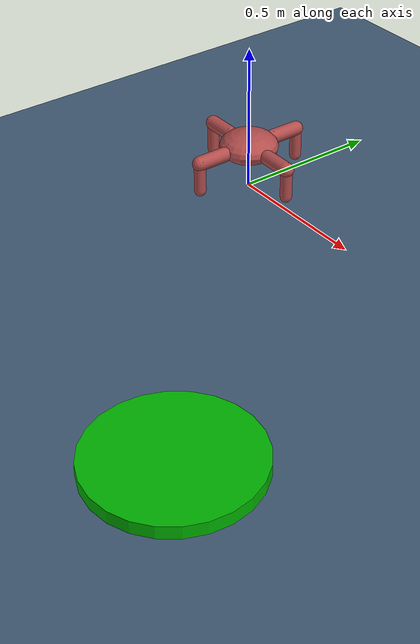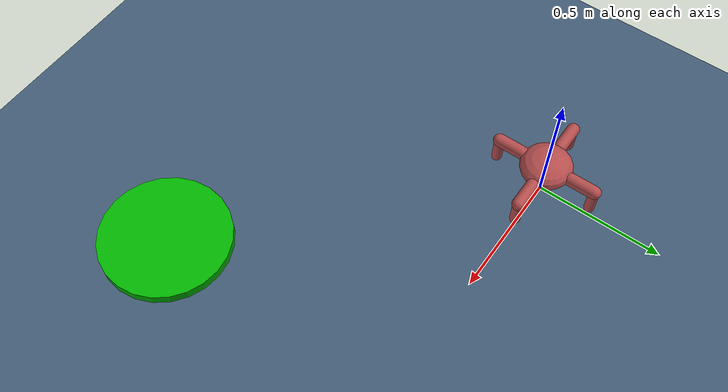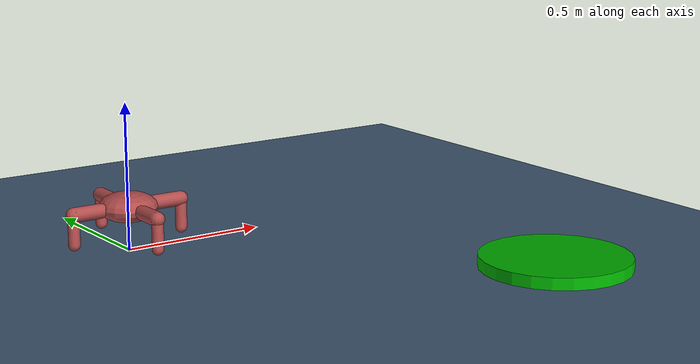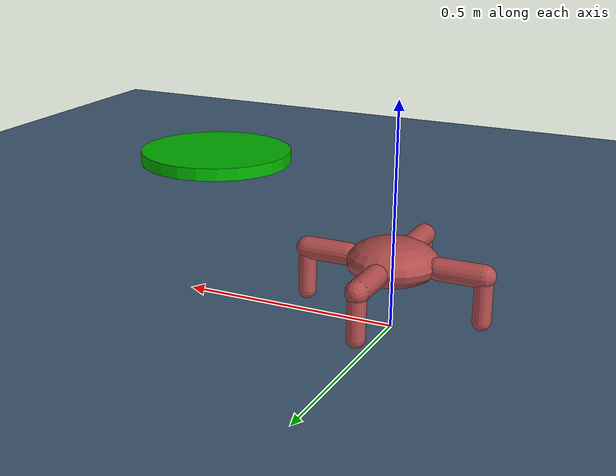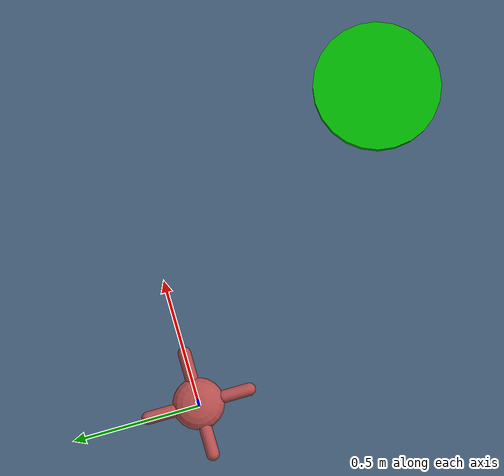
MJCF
<mujoco model="SPIDER_4_LEGS">
	<default>
		<!--
			Default values - e.g. Each geom defined in worldbody
            will be a "capsule" shape unless specified differently
            (like on line 30)
		-->
		<geom type="capsule" rgba="0.7 0.3 0.3 1" />
		<joint damping="2" type="hinge" />
	</default>

	<asset>
		<!-- Skybox texture -->
		<texture name="skybox" type="skybox" builtin="gradient" rgb1=".4 .6 .8" rgb2="0 0 0" width="800" height="800" mark="random" markrgb="1 1 1" />

		<!-- Floor texture / material -->
		<texture name="checker_pattern" type="2d" builtin="checker" width="300" height="300" rgb1="0.2 0.3 0.4" rgb2="0.3 0.4 0.5" />
		<material name="floor_material" texture="checker_pattern" texrepeat="5 5" />
	</asset>

	<visual>
		<!-- Let there be light! -->
		<headlight ambient="0.4 0.4 0.4" diffuse="0.8 0.8 0.8" specular="0.1 0.1 0.1" />
		<quality shadowsize="2048" />
	</visual>

	<!-- Let's add some objects to our model! -->
	<worldbody>
		<!-- Add a floor -->
		<geom name="floor" type="plane" size="2 2 0.1" material="floor_material" rgba="0.5 0.5 0.5 1" />

		<!-- Add a spider -->
		<body name="spider" pos="0 0 0.15">
			<!-- The spider is free to move! -->
			<freejoint />

			<!-- Spider's body -->
			<geom name="torso" type="ellipsoid" size="0.1 0.1 0.05" />

			<!-- Spider's legs -->

			<!-- Leg 1 -->
			<body name="leg1_thigh" pos="0.1 0 0" euler="0 0 0">
				<geom name="leg1_thigh" fromto="0 0 0 0.1 0 0" size="0.025" />
				<joint name="leg1_thigh" axis="0 0 1" />

				<body name="leg1_lower_leg" pos="0.1 0 0">
					<geom name="leg1_lower_leg" fromto="0 0 0 0 0 -0.1" size="0.02" />
					<joint name="leg1_lower_leg" axis="0 1 0" />
				</body>
			</body>

			<!-- Leg 2 -->
			<body name="leg2_thigh" pos="0 0.1 0" euler="0 0 90">
				<geom name="leg2_thigh" fromto="0 0 0 0.1 0 0" size="0.025" />
				<joint name="leg2_thigh" axis="0 0 1" />

				<body name="leg2_lower_leg" pos="0.1 0 0">
					<geom name="leg2_lower_leg" fromto="0 0 0 0 0 -0.1" size="0.02" />
					<joint name="leg2_lower_leg" axis="0 1 0" />
				</body>
			</body>

			<!-- Leg 3 -->
			<body name="leg3_thigh" pos="-0.1 0 0" euler="0 0 180">
				<geom name="leg3_thigh" fromto="0 0 0 0.1 0 0" size="0.025" />
				<joint name="leg3_thigh" axis="0 0 1" />

				<body name="leg3_lower_leg" pos="0.1 0 0">
					<geom name="leg3_lower_leg" fromto="0 0 0 0 0 -0.1" size="0.02" />
					<joint name="leg3_lower_leg" axis="0 1 0" />
				</body>
			</body>

			<!-- Leg 4 -->
			<body name="leg4_thigh" pos="0 -0.1 0" euler="0 0 270">
				<geom name="leg4_thigh" fromto="0 0 0 0.1 0 0" size="0.025" />
				<joint name="leg4_thigh" axis="0 0 1" />

				<body name="leg4_lower_leg" pos="0.1 0 0">
					<geom name="leg4_lower_leg" fromto="0 0 0 0 0 -0.1" size="0.02" />
					<joint name="leg4_lower_leg" axis="0 1 0" />
				</body>
			</body>
		</body>

		<!-- Add a button -->
		<body name="target_button" pos="1 -1 .032">
			<geom name="target_button" type="cylinder" size="0.25 0.0202" rgba="0 0.7 0 1" />
			<site name="target_button" type="cylinder" size="0.2525 0.0202" rgba="0 0.7 0 0" />
		</body>

	</worldbody>

	<actuator>
		<!--
			Actuators correspond to continuous actions for RL.
			Currently their ranges are between -1 and 1
			i.e. $a \in \mathcal{A} \equiv \left[ -1, 1 \right]^8$,
			but this can be changed.
		-->
		<position name="leg1_thigh" joint="leg1_thigh" kp="10" ctrllimited="true" ctrlrange="-1.0 1.0" />
		<position name="leg1_lower_leg" joint="leg1_lower_leg" kp="10" ctrllimited="true" ctrlrange="-1.0 1.0" />
		<position name="leg2_thigh" joint="leg2_thigh" kp="10" ctrllimited="true" ctrlrange="-1.0 1.0" />
		<position name="leg2_lower_leg" joint="leg2_lower_leg" kp="10" ctrllimited="true" ctrlrange="-1.0 1.0" />
		<position name="leg3_thigh" joint="leg3_thigh" kp="10" ctrllimited="true" ctrlrange="-1.0 1.0" />
		<position name="leg3_lower_leg" joint="leg3_lower_leg" kp="10" ctrllimited="true" ctrlrange="-1.0 1.0" />
		<position name="leg4_thigh" joint="leg4_thigh" kp="10" ctrllimited="true" ctrlrange="-1.0 1.0" />
		<position name="leg4_lower_leg" joint="leg4_lower_leg" kp="10" ctrllimited="true" ctrlrange="-1.0 1.0" />
	</actuator>

	<sensor>
		<!--
			Sense when the target button has been touched.
			More being touched = more reward!
		-->
		<touch name="button_touch_sensor" site="target_button" />
	</sensor>
</mujoco>
